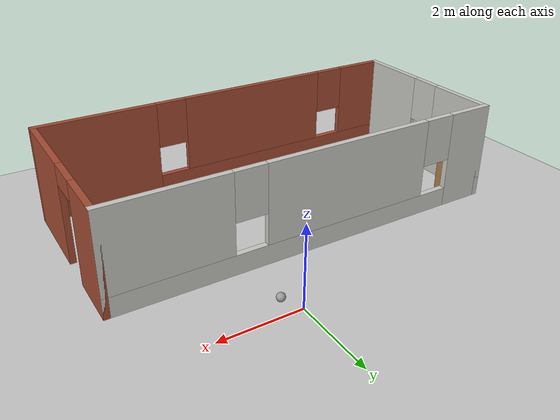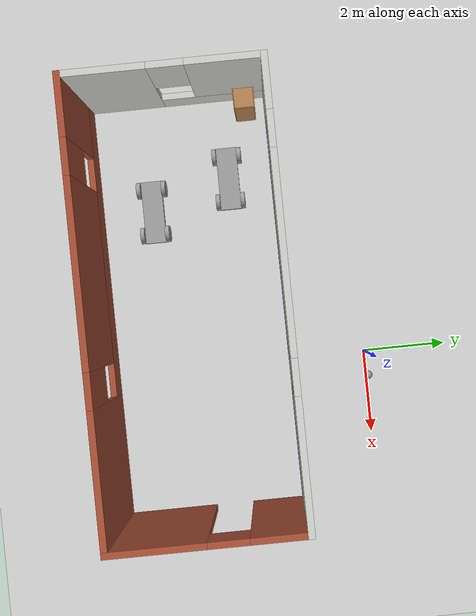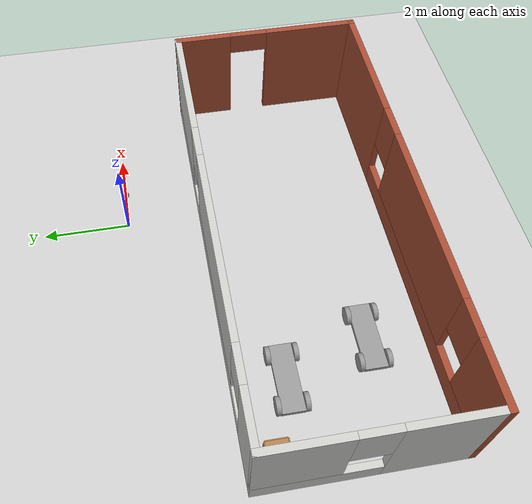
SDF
<sdf version="1.6">
 <world name="default">
  <plugin name="hello" filename="libhello.so"/>
  <light name="sun" type="directional">
   <pose>0 0 10 0 -0 0</pose>
   <diffuse>0.8 0.8 0.8 1</diffuse>
   <specular>0.2 0.2 0.2 1</specular>
   <attenuation>
    <range>1000</range>
    <constant>0.9</constant>
    <linear>0.01</linear>
    <quadratic>0.001</quadratic>
   </attenuation>
   <direction>-0.5 0.1 -0.9</direction>
  </light>
  <model name="ground_plane">
   <static>1</static>
   <link name="link">
    <collision name="collision">
     <geometry><plane><normal>0 0 1</normal><size>100 100</size></plane></geometry>
     <surface>
      <contact><collide_bitmask>65535</collide_bitmask></contact>
      <friction><ode><mu>100</mu><mu2>50</mu2></ode></friction>
     </surface>
    </collision>
    <visual name="visual">
     <cast_shadows>0</cast_shadows>
     <geometry><plane><normal>0 0 1</normal><size>100 100</size></plane></geometry>
     <material>
      <script><uri>file://media/materials/scripts/gazebo.material</uri><name>Gazebo/Grey</name></script>
     </material>
    </visual>
   </link>
  </model>
  <gravity>0 0 -9.8</gravity>
  <magnetic_field>6e-06 2.3e-05 -4.2e-05</magnetic_field>
  <atmosphere type="adiabatic"/>
  <physics name="default_physics" default="0" type="ode">
   <max_step_size>0.001</max_step_size>
   <real_time_factor>1</real_time_factor>
   <real_time_update_rate>1000</real_time_update_rate>
  </physics>
  <scene><ambient>0.4 0.4 0.4 1</ambient><background>0.7 0.7 0.7 1</background><shadows>1</shadows></scene>
  <spherical_coordinates>
   <surface_model>EARTH_WGS84</surface_model>
   <latitude_deg>0</latitude_deg>
   <longitude_deg>0</longitude_deg>
   <elevation>0</elevation>
   <heading_deg>0</heading_deg>
  </spherical_coordinates>
  <model name="first_building">
   <pose>-1.53 -3.965 0 0 -0 0</pose>
   <link name="Wall_0">
    <pose>0 2.175 0 0 -0 0</pose>
    <visual name="Wall_0_Visual_0">
     <pose>-4.50845 0 1.25 0 -0 0</pose>
     <geometry><box><size>1.2331 0.15 2.5</size></box></geometry>
     <material>
      <script><uri>file://media/materials/scripts/gazebo.material</uri><name>Gazebo/CeilingTiled</name></script>
      <ambient>1 0.764706 0.305882 1</ambient>
     </material>
     <meta><layer>0</layer></meta>
    </visual>
    <collision name="Wall_0_Collision_0">
     <geometry><box><size>1.2331 0.15 2.5</size></box></geometry>
     <pose>-4.50845 0 1.25 0 -0 0</pose>
    </collision>
    <visual name="Wall_0_Visual_1">
     <pose>0.616552 0 0.25 0 -0 0</pose>
     <geometry><box><size>9.01689 0.15 0.5</size></box></geometry>
     <material>
      <script><uri>file://media/materials/scripts/gazebo.material</uri><name>Gazebo/CeilingTiled</name></script>
      <ambient>1 0.764706 0.305882 1</ambient>
     </material>
     <meta><layer>0</layer></meta>
    </visual>
    <collision name="Wall_0_Collision_1">
     <geometry><box><size>9.01689 0.15 0.5</size></box></geometry>
     <pose>0.616552 0 0.25 0 -0 0</pose>
    </collision>
    <visual name="Wall_0_Visual_2">
     <pose>-0.880335 0 1.5 0 -0 0</pose>
     <geometry><box><size>4.42312 0.15 2</size></box></geometry>
     <material>
      <script><uri>file://media/materials/scripts/gazebo.material</uri><name>Gazebo/CeilingTiled</name></script>
      <ambient>1 0.764706 0.305882 1</ambient>
     </material>
     <meta><layer>0</layer></meta>
    </visual>
    <collision name="Wall_0_Collision_2">
     <geometry><box><size>4.42312 0.15 2</size></box></geometry>
     <pose>-0.880335 0 1.5 0 -0 0</pose>
    </collision>
    <visual name="Wall_0_Visual_3">
     <pose>3.62811 0 1.5 0 -0 0</pose>
     <geometry><box><size>2.99377 0.15 2</size></box></geometry>
     <material>
      <script><uri>file://media/materials/scripts/gazebo.material</uri><name>Gazebo/CeilingTiled</name></script>
      <ambient>1 0.764706 0.305882 1</ambient>
     </material>
     <meta><layer>0</layer></meta>
    </visual>
    <collision name="Wall_0_Collision_3">
     <geometry><box><size>2.99377 0.15 2</size></box></geometry>
     <pose>3.62811 0 1.5 0 -0 0</pose>
    </collision>
    <visual name="Wall_0_Visual_4">
     <pose>-3.49189 0 1.9 0 -0 0</pose>
     <geometry><box><size>0.8 0.15 1.2</size></box></geometry>
     <material>
      <script><uri>file://media/materials/scripts/gazebo.material</uri><name>Gazebo/CeilingTiled</name></script>
      <ambient>1 0.764706 0.305882 1</ambient>
     </material>
     <meta><layer>0</layer></meta>
    </visual>
    <collision name="Wall_0_Collision_4">
     <geometry><box><size>0.8 0.15 1.2</size></box></geometry>
     <pose>-3.49189 0 1.9 0 -0 0</pose>
    </collision>
    <visual name="Wall_0_Visual_5">
     <pose>1.73123 0 1.9 0 -0 0</pose>
     <geometry><box><size>0.8 0.15 1.2</size></box></geometry>
     <material>
      <script><uri>file://media/materials/scripts/gazebo.material</uri><name>Gazebo/CeilingTiled</name></script>
      <ambient>1 0.764706 0.305882 1</ambient>
     </material>
     <meta><layer>0</layer></meta>
    </visual>
    <collision name="Wall_0_Collision_5">
     <geometry><box><size>0.8 0.15 1.2</size></box></geometry>
     <pose>1.73123 0 1.9 0 -0 0</pose>
    </collision>
   </link>
   <link name="Wall_1">
    <pose>5.05 0 0 0 0 -1.5708</pose>
    <visual name="Wall_1_Visual_0">
     <pose>-1.56729 0 1.25 0 -0 0</pose>
     <geometry><box><size>1.36542 0.15 2.5</size></box></geometry>
     <material>
      <script><uri>file://media/materials/scripts/gazebo.material</uri><name>Gazebo/Bricks</name></script>
      <ambient>1 1 1 1</ambient>
     </material>
     <meta><layer>0</layer></meta>
    </visual>
    <collision name="Wall_1_Collision_0">
     <geometry><box><size>1.36542 0.15 2.5</size></box></geometry>
     <pose>-1.56729 0 1.25 0 -0 0</pose>
    </collision>
    <visual name="Wall_1_Visual_1">
     <pose>1.13271 0 1.25 0 -0 0</pose>
     <geometry><box><size>2.23458 0.15 2.5</size></box></geometry>
     <material>
      <script><uri>file://media/materials/scripts/gazebo.material</uri><name>Gazebo/Bricks</name></script>
      <ambient>1 1 1 1</ambient>
     </material>
     <meta><layer>0</layer></meta>
    </visual>
    <collision name="Wall_1_Collision_1">
     <geometry><box><size>2.23458 0.15 2.5</size></box></geometry>
     <pose>1.13271 0 1.25 0 -0 0</pose>
    </collision>
    <visual name="Wall_1_Visual_2">
     <pose>-0.434579 0 2.25 0 -0 0</pose>
     <geometry><box><size>0.9 0.15 0.5</size></box></geometry>
     <material>
      <script><uri>file://media/materials/scripts/gazebo.material</uri><name>Gazebo/Bricks</name></script>
      <ambient>1 1 1 1</ambient>
     </material>
     <meta><layer>0</layer></meta>
    </visual>
    <collision name="Wall_1_Collision_2">
     <geometry><box><size>0.9 0.15 0.5</size></box></geometry>
     <pose>-0.434579 0 2.25 0 -0 0</pose>
    </collision>
   </link>
   <link name="Wall_2">
    <pose>0 -2.175 0 0 -0 3.14159</pose>
    <visual name="Wall_2_Visual_0">
     <pose>-3.56363 0 1.25 0 -0 0</pose>
     <geometry><box><size>3.12274 0.15 2.5</size></box></geometry>
     <material>
      <script><uri>file://media/materials/scripts/gazebo.material</uri><name>Gazebo/Bricks</name></script>
      <ambient>1 1 1 1</ambient>
     </material>
     <meta><layer>0</layer></meta>
    </visual>
    <collision name="Wall_2_Collision_0">
     <geometry><box><size>3.12274 0.15 2.5</size></box></geometry>
     <pose>-3.56363 0 1.25 0 -0 0</pose>
    </collision>
    <visual name="Wall_2_Visual_1">
     <pose>1.56137 0 0.25 0 -0 0</pose>
     <geometry><box><size>7.12726 0.15 0.5</size></box></geometry>
     <material>
      <script><uri>file://media/materials/scripts/gazebo.material</uri><name>Gazebo/Bricks</name></script>
      <ambient>1 1 1 1</ambient>
     </material>
     <meta><layer>0</layer></meta>
    </visual>
    <collision name="Wall_2_Collision_1">
     <geometry><box><size>7.12726 0.15 0.5</size></box></geometry>
     <pose>1.56137 0 0.25 0 -0 0</pose>
    </collision>
    <visual name="Wall_2_Visual_2">
     <pose>0.864214 0 1.5 0 -0 0</pose>
     <geometry><box><size>4.13295 0.15 2</size></box></geometry>
     <material>
      <script><uri>file://media/materials/scripts/gazebo.material</uri><name>Gazebo/Bricks</name></script>
      <ambient>1 1 1 1</ambient>
     </material>
     <meta><layer>0</layer></meta>
    </visual>
    <collision name="Wall_2_Collision_2">
     <geometry><box><size>4.13295 0.15 2</size></box></geometry>
     <pose>0.864214 0 1.5 0 -0 0</pose>
    </collision>
    <visual name="Wall_2_Visual_3">
     <pose>4.42784 0 1.5 0 -0 0</pose>
     <geometry><box><size>1.39431 0.15 2</size></box></geometry>
     <material>
      <script><uri>file://media/materials/scripts/gazebo.material</uri><name>Gazebo/Bricks</name></script>
      <ambient>1 1 1 1</ambient>
     </material>
     <meta><layer>0</layer></meta>
    </visual>
    <collision name="Wall_2_Collision_3">
     <geometry><box><size>1.39431 0.15 2</size></box></geometry>
     <pose>4.42784 0 1.5 0 -0 0</pose>
    </collision>
    <visual name="Wall_2_Visual_4">
     <pose>-1.60226 0 1.9 0 -0 0</pose>
     <geometry><box><size>0.8 0.15 1.2</size></box></geometry>
     <material>
      <script><uri>file://media/materials/scripts/gazebo.material</uri><name>Gazebo/Bricks</name></script>
      <ambient>1 1 1 1</ambient>
     </material>
     <meta><layer>0</layer></meta>
    </visual>
    <collision name="Wall_2_Collision_4">
     <geometry><box><size>0.8 0.15 1.2</size></box></geometry>
     <pose>-1.60226 0 1.9 0 -0 0</pose>
    </collision>
    <visual name="Wall_2_Visual_5">
     <pose>3.33069 0 1.9 0 -0 0</pose>
     <geometry><box><size>0.8 0.15 1.2</size></box></geometry>
     <material>
      <script><uri>file://media/materials/scripts/gazebo.material</uri><name>Gazebo/Bricks</name></script>
      <ambient>1 1 1 1</ambient>
     </material>
     <meta><layer>0</layer></meta>
    </visual>
    <collision name="Wall_2_Collision_5">
     <geometry><box><size>0.8 0.15 1.2</size></box></geometry>
     <pose>3.33069 0 1.9 0 -0 0</pose>
    </collision>
   </link>
   <link name="Wall_3">
    <pose>-5.05 0 0 0 -0 1.5708</pose>
    <visual name="Wall_3_Visual_0">
     <pose>-1.28504 0 1.25 0 -0 0</pose>
     <geometry><box><size>1.92992 0.15 2.5</size></box></geometry>
     <material>
      <script><uri>file://media/materials/scripts/gazebo.material</uri><name>Gazebo/CeilingTiled</name></script>
      <ambient>1 0.764706 0.305882 1</ambient>
     </material>
     <meta><layer>0</layer></meta>
    </visual>
    <collision name="Wall_3_Collision_0">
     <geometry><box><size>1.92992 0.15 2.5</size></box></geometry>
     <pose>-1.28504 0 1.25 0 -0 0</pose>
    </collision>
    <visual name="Wall_3_Visual_1">
     <pose>0.964962 0 0.25 0 -0 0</pose>
     <geometry><box><size>2.57008 0.15 0.5</size></box></geometry>
     <material>
      <script><uri>file://media/materials/scripts/gazebo.material</uri><name>Gazebo/CeilingTiled</name></script>
      <ambient>1 0.764706 0.305882 1</ambient>
     </material>
     <meta><layer>0</layer></meta>
    </visual>
    <collision name="Wall_3_Collision_1">
     <geometry><box><size>2.57008 0.15 0.5</size></box></geometry>
     <pose>0.964962 0 0.25 0 -0 0</pose>
    </collision>
    <visual name="Wall_3_Visual_2">
     <pose>1.36496 0 1.5 0 -0 0</pose>
     <geometry><box><size>1.77008 0.15 2</size></box></geometry>
     <material>
      <script><uri>file://media/materials/scripts/gazebo.material</uri><name>Gazebo/CeilingTiled</name></script>
      <ambient>1 0.764706 0.305882 1</ambient>
     </material>
     <meta><layer>0</layer></meta>
    </visual>
    <collision name="Wall_3_Collision_2">
     <geometry><box><size>1.77008 0.15 2</size></box></geometry>
     <pose>1.36496 0 1.5 0 -0 0</pose>
    </collision>
    <visual name="Wall_3_Visual_3">
     <pose>0.079923 0 1.9 0 -0 0</pose>
     <geometry><box><size>0.8 0.15 1.2</size></box></geometry>
     <material>
      <script><uri>file://media/materials/scripts/gazebo.material</uri><name>Gazebo/CeilingTiled</name></script>
      <ambient>1 0.764706 0.305882 1</ambient>
     </material>
     <meta><layer>0</layer></meta>
    </visual>
    <collision name="Wall_3_Collision_3">
     <geometry><box><size>0.8 0.15 1.2</size></box></geometry>
     <pose>0.079923 0 1.9 0 -0 0</pose>
    </collision>
   </link>
   <static>1</static>
  </model>
  <model name="cabinet">
   <static>1</static>
   <link name="cabinet_bottom_plate">
    <inertial>
     <pose>0 0 -1 0 -0 0</pose>
     <inertia><ixx>2.05</ixx><ixy>0</ixy><ixz>0</ixz><iyy>2.05</iyy><iyz>0</iyz><izz>2.05</izz></inertia>
     <mass>25</mass>
    </inertial>
    <collision name="cabinet_bottom_plate_geom">
     <pose>0 0 0.01 0 -0 0</pose>
     <geometry><box><size>0.45 0.45 0.02</size></box></geometry>
    </collision>
    <visual name="cabinet_bottom_plate_geom_visual">
     <pose>0 0 0.01 0 -0 0</pose>
     <geometry><box><size>0.45 0.45 0.02</size></box></geometry>
     <material>
      <script><uri>file://media/materials/scripts/gazebo.material</uri><name>Gazebo/Wood</name></script>
     </material>
    </visual>
    <collision name="cabinet_bottom_plate_geom_cabinet_back_plate">
     <pose>0.235 0 0.51 0 -0 0</pose>
     <geometry><box><size>0.02 0.45 1.02</size></box></geometry>
    </collision>
    <visual name="cabinet_bottom_plate_geom_cabinet_back_plate_visual">
     <pose>0.235 0 0.51 0 -0 0</pose>
     <geometry><box><size>0.02 0.45 1.02</size></box></geometry>
     <material>
      <script><uri>file://media/materials/scripts/gazebo.material</uri><name>Gazebo/Wood</name></script>
     </material>
    </visual>
    <collision name="cabinet_bottom_plate_geom_cabinet_left_plate">
     <pose>0 0.235 0.51 0 -0 0</pose>
     <geometry><box><size>0.45 0.02 1.02</size></box></geometry>
    </collision>
    <visual name="cabinet_bottom_plate_geom_cabinet_left_plate_visual">
     <pose>0 0.235 0.51 0 -0 0</pose>
     <geometry><box><size>0.45 0.02 1.02</size></box></geometry>
     <material>
      <script><uri>file://media/materials/scripts/gazebo.material</uri><name>Gazebo/Wood</name></script>
     </material>
    </visual>
    <collision name="cabinet_bottom_plate_geom_cabinet_middle_plate">
     <pose>0 0 0.51 0 -0 0</pose>
     <geometry><box><size>0.45 0.45 0.02</size></box></geometry>
    </collision>
    <visual name="cabinet_bottom_plate_geom_cabinet_middle_plate_visual">
     <pose>0 0 0.51 0 -0 0</pose>
     <geometry><box><size>0.45 0.45 0.02</size></box></geometry>
     <material>
      <script><uri>file://media/materials/scripts/gazebo.material</uri><name>Gazebo/Wood</name></script>
     </material>
    </visual>
    <collision name="cabinet_bottom_plate_geom_cabinet_right_plate">
     <pose>0 -0.235 0.51 0 -0 0</pose>
     <geometry><box><size>0.45 0.02 1.02</size></box></geometry>
    </collision>
    <visual name="cabinet_bottom_plate_geom_cabinet_right_plate_visual">
     <pose>0 -0.235 0.51 0 -0 0</pose>
     <geometry><box><size>0.45 0.02 1.02</size></box></geometry>
     <material>
      <script><uri>file://media/materials/scripts/gazebo.material</uri><name>Gazebo/Wood</name></script>
     </material>
    </visual>
    <collision name="cabinet_bottom_plate_geom_cabinet_top_plate">
     <pose>0 0 1.01 0 -0 0</pose>
     <geometry><box><size>0.45 0.45 0.02</size></box></geometry>
    </collision>
    <visual name="cabinet_bottom_plate_geom_cabinet_top_plate_visual">
     <pose>0 0 1.01 0 -0 0</pose>
     <geometry><box><size>0.45 0.45 0.02</size></box></geometry>
     <material>
      <script><uri>file://media/materials/scripts/gazebo.material</uri><name>Gazebo/Wood</name></script>
     </material>
    </visual>
   </link>
   <pose>-6.20598 -2.33068 0 0 -0 0</pose>
  </model>
  <model name="my_wagon">
   <link name="link_0">
    <pose>2e-06 -0 0 0 -0 0</pose>
    <inertial>
     <mass>1</mass>
     <inertia>
      <ixx>0.166667</ixx>
      <ixy>0</ixy>
      <ixz>0</ixz>
      <iyy>0.166667</iyy>
      <iyz>0</iyz>
      <izz>0.166667</izz>
     </inertia>
     <pose>0 0 0.2 0 -0 0</pose>
    </inertial>
    <visual name="visual">
     <geometry><box><size>1.5 0.5 0.1</size></box></geometry>
     <material>
      <lighting>1</lighting>
      <script><uri>file://media/materials/scripts/gazebo.material</uri><name>Gazebo/Grey</name></script>
      <shader type="pixel"><normal_map>__default__</normal_map></shader>
      <ambient>0.3 0.3 0.3 1</ambient>
      <diffuse>0.7 0.7 0.7 1</diffuse>
      <specular>0.01 0.01 0.01 1</specular>
      <emissive>0 0 0 1</emissive>
     </material>
    </visual>
    <collision name="collision">
     <geometry><box><size>1.5 0.5 0.1</size></box></geometry>
     <surface>
      <friction>
       <ode><mu>1</mu><mu2>1</mu2><fdir1>0 0 0</fdir1><slip1>0</slip1><slip2>0</slip2></ode>
       <torsional>
        <coefficient>1</coefficient>
        <patch_radius>0</patch_radius>
        <surface_radius>0</surface_radius>
        <use_patch_radius>1</use_patch_radius>
        <ode><slip>0</slip></ode>
       </torsional>
      </friction>
      <bounce><restitution_coefficient>0</restitution_coefficient><threshold>1e+06</threshold></bounce>
      <contact>
       <collide_without_contact>0</collide_without_contact>
       <collide_without_contact_bitmask>1</collide_without_contact_bitmask>
       <collide_bitmask>1</collide_bitmask>
       <ode>
        <soft_cfm>0</soft_cfm>
        <soft_erp>0.2</soft_erp>
        <kp>1e+13</kp>
        <kd>1</kd>
        <max_vel>0.01</max_vel>
        <min_depth>0</min_depth>
       </ode>
       <bullet>
        <split_impulse>1</split_impulse>
        <split_impulse_penetration_threshold>-0.01</split_impulse_penetration_threshold>
        <soft_cfm>0</soft_cfm>
        <soft_erp>0.2</soft_erp>
        <kp>1e+13</kp>
        <kd>1</kd>
       </bullet>
      </contact>
     </surface>
    </collision>
   </link>
   <link name="link_3_clone_0">
    <pose>-0.549998 -0.30002 0 1.5707 -0 0</pose>
    <inertial>
     <mass>1</mass>
     <inertia><ixx>0.145833</ixx><ixy>0</ixy><ixz>0</ixz><iyy>0.145833</iyy><iyz>0</iyz><izz>0.125</izz></inertia>
    </inertial>
    <visual name="visual">
     <geometry><cylinder><radius>0.2</radius><length>0.1</length></cylinder></geometry>
     <material>
      <lighting>1</lighting>
      <script><uri>file://media/materials/scripts/gazebo.material</uri><name>Gazebo/Grey</name></script>
      <shader type="pixel"><normal_map>__default__</normal_map></shader>
      <ambient>0.3 0.3 0.3 1</ambient>
      <diffuse>0.7 0.7 0.7 1</diffuse>
      <specular>0.01 0.01 0.01 1</specular>
      <emissive>0 0 0 1</emissive>
     </material>
    </visual>
    <collision name="collision">
     <geometry><cylinder><radius>0.2</radius><length>0.1</length></cylinder></geometry>
     <surface>
      <friction>
       <ode><mu>1</mu><mu2>1</mu2><fdir1>0 0 0</fdir1><slip1>0</slip1><slip2>0</slip2></ode>
       <torsional>
        <coefficient>1</coefficient>
        <patch_radius>0</patch_radius>
        <surface_radius>0</surface_radius>
        <use_patch_radius>1</use_patch_radius>
        <ode><slip>0</slip></ode>
       </torsional>
      </friction>
      <bounce><restitution_coefficient>0</restitution_coefficient><threshold>1e+06</threshold></bounce>
      <contact>
       <collide_without_contact>0</collide_without_contact>
       <collide_without_contact_bitmask>1</collide_without_contact_bitmask>
       <collide_bitmask>1</collide_bitmask>
       <ode>
        <soft_cfm>0</soft_cfm>
        <soft_erp>0.2</soft_erp>
        <kp>1e+13</kp>
        <kd>1</kd>
        <max_vel>0.01</max_vel>
        <min_depth>0</min_depth>
       </ode>
       <bullet>
        <split_impulse>1</split_impulse>
        <split_impulse_penetration_threshold>-0.01</split_impulse_penetration_threshold>
        <soft_cfm>0</soft_cfm>
        <soft_erp>0.2</soft_erp>
        <kp>1e+13</kp>
        <kd>1</kd>
       </bullet>
      </contact>
     </surface>
    </collision>
   </link>
   <link name="link_3_clone_1">
    <pose>-0.549998 0.300019 0 1.5707 -0 0</pose>
    <inertial>
     <mass>1</mass>
     <inertia><ixx>0.145833</ixx><ixy>0</ixy><ixz>0</ixz><iyy>0.145833</iyy><iyz>0</iyz><izz>0.125</izz></inertia>
    </inertial>
    <visual name="visual">
     <geometry><cylinder><radius>0.2</radius><length>0.1</length></cylinder></geometry>
     <material>
      <lighting>1</lighting>
      <script><uri>file://media/materials/scripts/gazebo.material</uri><name>Gazebo/Grey</name></script>
      <shader type="pixel"><normal_map>__default__</normal_map></shader>
      <ambient>0.3 0.3 0.3 1</ambient>
      <diffuse>0.7 0.7 0.7 1</diffuse>
      <specular>0.01 0.01 0.01 1</specular>
      <emissive>0 0 0 1</emissive>
     </material>
    </visual>
    <collision name="collision">
     <geometry><cylinder><radius>0.2</radius><length>0.1</length></cylinder></geometry>
     <surface>
      <friction>
       <ode><mu>1</mu><mu2>1</mu2><fdir1>0 0 0</fdir1><slip1>0</slip1><slip2>0</slip2></ode>
       <torsional>
        <coefficient>1</coefficient>
        <patch_radius>0</patch_radius>
        <surface_radius>0</surface_radius>
        <use_patch_radius>1</use_patch_radius>
        <ode><slip>0</slip></ode>
       </torsional>
      </friction>
      <bounce><restitution_coefficient>0</restitution_coefficient><threshold>1e+06</threshold></bounce>
      <contact>
       <collide_without_contact>0</collide_without_contact>
       <collide_without_contact_bitmask>1</collide_without_contact_bitmask>
       <collide_bitmask>1</collide_bitmask>
       <ode>
        <soft_cfm>0</soft_cfm>
        <soft_erp>0.2</soft_erp>
        <kp>1e+13</kp>
        <kd>1</kd>
        <max_vel>0.01</max_vel>
        <min_depth>0</min_depth>
       </ode>
       <bullet>
        <split_impulse>1</split_impulse>
        <split_impulse_penetration_threshold>-0.01</split_impulse_penetration_threshold>
        <soft_cfm>0</soft_cfm>
        <soft_erp>0.2</soft_erp>
        <kp>1e+13</kp>
        <kd>1</kd>
       </bullet>
      </contact>
     </surface>
    </collision>
   </link>
   <link name="link_3_clone_clone">
    <pose>0.550002 -0.30002 0 1.5707 -0 0</pose>
    <inertial>
     <mass>1</mass>
     <inertia><ixx>0.145833</ixx><ixy>0</ixy><ixz>0</ixz><iyy>0.145833</iyy><iyz>0</iyz><izz>0.125</izz></inertia>
    </inertial>
    <visual name="visual">
     <geometry><cylinder><radius>0.2</radius><length>0.1</length></cylinder></geometry>
     <material>
      <lighting>1</lighting>
      <script><uri>file://media/materials/scripts/gazebo.material</uri><name>Gazebo/Grey</name></script>
      <shader type="pixel"><normal_map>__default__</normal_map></shader>
      <ambient>0.3 0.3 0.3 1</ambient>
      <diffuse>0.7 0.7 0.7 1</diffuse>
      <specular>0.01 0.01 0.01 1</specular>
      <emissive>0 0 0 1</emissive>
     </material>
    </visual>
    <collision name="collision">
     <geometry><cylinder><radius>0.2</radius><length>0.1</length></cylinder></geometry>
     <surface>
      <friction>
       <ode><mu>1</mu><mu2>1</mu2><fdir1>0 0 0</fdir1><slip1>0</slip1><slip2>0</slip2></ode>
       <torsional>
        <coefficient>1</coefficient>
        <patch_radius>0</patch_radius>
        <surface_radius>0</surface_radius>
        <use_patch_radius>1</use_patch_radius>
        <ode><slip>0</slip></ode>
       </torsional>
      </friction>
      <bounce><restitution_coefficient>0</restitution_coefficient><threshold>1e+06</threshold></bounce>
      <contact>
       <collide_without_contact>0</collide_without_contact>
       <collide_without_contact_bitmask>1</collide_without_contact_bitmask>
       <collide_bitmask>1</collide_bitmask>
       <ode>
        <soft_cfm>0</soft_cfm>
        <soft_erp>0.2</soft_erp>
        <kp>1e+13</kp>
        <kd>1</kd>
        <max_vel>0.01</max_vel>
        <min_depth>0</min_depth>
       </ode>
       <bullet>
        <split_impulse>1</split_impulse>
        <split_impulse_penetration_threshold>-0.01</split_impulse_penetration_threshold>
        <soft_cfm>0</soft_cfm>
        <soft_erp>0.2</soft_erp>
        <kp>1e+13</kp>
        <kd>1</kd>
       </bullet>
      </contact>
     </surface>
    </collision>
   </link>
   <link name="link_3_clone_clone_0">
    <pose>0.550002 0.300019 0 1.5707 -0 0</pose>
    <inertial>
     <mass>1</mass>
     <inertia><ixx>0.145833</ixx><ixy>0</ixy><ixz>0</ixz><iyy>0.145833</iyy><iyz>0</iyz><izz>0.125</izz></inertia>
    </inertial>
    <visual name="visual">
     <geometry><cylinder><radius>0.2</radius><length>0.1</length></cylinder></geometry>
     <material>
      <lighting>1</lighting>
      <script><uri>file://media/materials/scripts/gazebo.material</uri><name>Gazebo/Grey</name></script>
      <shader type="pixel"><normal_map>__default__</normal_map></shader>
      <ambient>0.3 0.3 0.3 1</ambient>
      <diffuse>0.7 0.7 0.7 1</diffuse>
      <specular>0.01 0.01 0.01 1</specular>
      <emissive>0 0 0 1</emissive>
     </material>
    </visual>
    <collision name="collision">
     <geometry><cylinder><radius>0.2</radius><length>0.1</length></cylinder></geometry>
     <surface>
      <friction>
       <ode><mu>1</mu><mu2>1</mu2><fdir1>0 0 0</fdir1><slip1>0</slip1><slip2>0</slip2></ode>
       <torsional>
        <coefficient>1</coefficient>
        <patch_radius>0</patch_radius>
        <surface_radius>0</surface_radius>
        <use_patch_radius>1</use_patch_radius>
        <ode><slip>0</slip></ode>
       </torsional>
      </friction>
      <bounce><restitution_coefficient>0</restitution_coefficient><threshold>1e+06</threshold></bounce>
      <contact>
       <collide_without_contact>0</collide_without_contact>
       <collide_without_contact_bitmask>1</collide_without_contact_bitmask>
       <collide_bitmask>1</collide_bitmask>
       <ode>
        <soft_cfm>0</soft_cfm>
        <soft_erp>0.2</soft_erp>
        <kp>1e+13</kp>
        <kd>1</kd>
        <max_vel>0.01</max_vel>
        <min_depth>0</min_depth>
       </ode>
       <bullet>
        <split_impulse>1</split_impulse>
        <split_impulse_penetration_threshold>-0.01</split_impulse_penetration_threshold>
        <soft_cfm>0</soft_cfm>
        <soft_erp>0.2</soft_erp>
        <kp>1e+13</kp>
        <kd>1</kd>
       </bullet>
      </contact>
     </surface>
    </collision>
   </link>
   <joint name="link_0_JOINT_0" type="revolute">
    <parent>link_0</parent>
    <child>link_3_clone_0</child>
    <axis>
     <xyz>0 0 1</xyz>
     <use_parent_model_frame>0</use_parent_model_frame>
     <limit>
      <lower>-1.79769e+308</lower>
      <upper>1.79769e+308</upper>
      <effort>-1</effort>
      <velocity>-1</velocity>
     </limit>
     <dynamics>
      <spring_reference>0</spring_reference>
      <spring_stiffness>0</spring_stiffness>
      <damping>0</damping>
     </dynamics>
    </axis>
    <physics>
     <ode><limit><cfm>0</cfm><erp>0.2</erp></limit><suspension><cfm>0</cfm><erp>0.2</erp></suspension></ode>
    </physics>
   </joint>
   <joint name="link_0_JOINT_1" type="revolute">
    <parent>link_0</parent>
    <child>link_3_clone_clone</child>
    <axis>
     <xyz>0 0 1</xyz>
     <use_parent_model_frame>0</use_parent_model_frame>
     <limit>
      <lower>-1.79769e+308</lower>
      <upper>1.79769e+308</upper>
      <effort>-1</effort>
      <velocity>-1</velocity>
     </limit>
     <dynamics>
      <spring_reference>0</spring_reference>
      <spring_stiffness>0</spring_stiffness>
      <damping>0</damping>
      <friction>0</friction>
     </dynamics>
    </axis>
    <physics>
     <ode><limit><cfm>0</cfm><erp>0.2</erp></limit><suspension><cfm>0</cfm><erp>0.2</erp></suspension></ode>
    </physics>
   </joint>
   <joint name="link_0_JOINT_3" type="revolute">
    <parent>link_0</parent>
    <child>link_3_clone_1</child>
    <axis>
     <xyz>0 0 1</xyz>
     <use_parent_model_frame>0</use_parent_model_frame>
     <limit>
      <lower>-1.79769e+308</lower>
      <upper>1.79769e+308</upper>
      <effort>-1</effort>
      <velocity>-1</velocity>
     </limit>
     <dynamics>
      <spring_reference>0</spring_reference>
      <spring_stiffness>0</spring_stiffness>
      <damping>0</damping>
     </dynamics>
    </axis>
    <physics>
     <ode><limit><cfm>0</cfm><erp>0.2</erp></limit><suspension><cfm>0</cfm><erp>0.2</erp></suspension></ode>
    </physics>
   </joint>
   <joint name="link_0_JOINT_4" type="revolute">
    <parent>link_0</parent>
    <child>link_3_clone_clone_0</child>
    <axis>
     <xyz>0 0 1</xyz>
     <use_parent_model_frame>0</use_parent_model_frame>
     <limit>
      <lower>-1.79769e+308</lower>
      <upper>1.79769e+308</upper>
      <effort>-1</effort>
      <velocity>-1</velocity>
     </limit>
     <dynamics>
      <spring_reference>0</spring_reference>
      <spring_stiffness>0</spring_stiffness>
      <damping>0</damping>
     </dynamics>
    </axis>
    <physics>
     <ode><limit><cfm>0</cfm><erp>0.2</erp></limit><suspension><cfm>0</cfm><erp>0.2</erp></suspension></ode>
    </physics>
   </joint>
   <static>0</static>
   <pose>-4.52565 -2.89903 0.2 2e-06 -7e-06 -0.002392</pose>
  </model>
  <model name="my_wagon_0">
   <link name="link_0">
    <pose>2e-06 -0 0 0 -0 0</pose>
    <inertial>
     <mass>1</mass>
     <inertia>
      <ixx>0.166667</ixx>
      <ixy>0</ixy>
      <ixz>0</ixz>
      <iyy>0.166667</iyy>
      <iyz>0</iyz>
      <izz>0.166667</izz>
     </inertia>
     <pose>0 0 0.2 0 -0 0</pose>
    </inertial>
    <visual name="visual">
     <geometry><box><size>1.5 0.5 0.1</size></box></geometry>
     <material>
      <lighting>1</lighting>
      <script><uri>file://media/materials/scripts/gazebo.material</uri><name>Gazebo/Grey</name></script>
      <shader type="pixel"><normal_map>__default__</normal_map></shader>
      <ambient>0.3 0.3 0.3 1</ambient>
      <diffuse>0.7 0.7 0.7 1</diffuse>
      <specular>0.01 0.01 0.01 1</specular>
      <emissive>0 0 0 1</emissive>
     </material>
    </visual>
    <collision name="collision">
     <geometry><box><size>1.5 0.5 0.1</size></box></geometry>
     <surface>
      <friction>
       <ode><mu>1</mu><mu2>1</mu2><fdir1>0 0 0</fdir1><slip1>0</slip1><slip2>0</slip2></ode>
       <torsional>
        <coefficient>1</coefficient>
        <patch_radius>0</patch_radius>
        <surface_radius>0</surface_radius>
        <use_patch_radius>1</use_patch_radius>
        <ode><slip>0</slip></ode>
       </torsional>
      </friction>
      <bounce><restitution_coefficient>0</restitution_coefficient><threshold>1e+06</threshold></bounce>
      <contact>
       <collide_without_contact>0</collide_without_contact>
       <collide_without_contact_bitmask>1</collide_without_contact_bitmask>
       <collide_bitmask>1</collide_bitmask>
       <ode>
        <soft_cfm>0</soft_cfm>
        <soft_erp>0.2</soft_erp>
        <kp>1e+13</kp>
        <kd>1</kd>
        <max_vel>0.01</max_vel>
        <min_depth>0</min_depth>
       </ode>
       <bullet>
        <split_impulse>1</split_impulse>
        <split_impulse_penetration_threshold>-0.01</split_impulse_penetration_threshold>
        <soft_cfm>0</soft_cfm>
        <soft_erp>0.2</soft_erp>
        <kp>1e+13</kp>
        <kd>1</kd>
       </bullet>
      </contact>
     </surface>
    </collision>
   </link>
   <link name="link_3_clone_0">
    <pose>-0.549998 -0.30002 0 1.5707 -0 0</pose>
    <inertial>
     <mass>1</mass>
     <inertia><ixx>0.145833</ixx><ixy>0</ixy><ixz>0</ixz><iyy>0.145833</iyy><iyz>0</iyz><izz>0.125</izz></inertia>
    </inertial>
    <visual name="visual">
     <geometry><cylinder><radius>0.2</radius><length>0.1</length></cylinder></geometry>
     <material>
      <lighting>1</lighting>
      <script><uri>file://media/materials/scripts/gazebo.material</uri><name>Gazebo/Grey</name></script>
      <shader type="pixel"><normal_map>__default__</normal_map></shader>
      <ambient>0.3 0.3 0.3 1</ambient>
      <diffuse>0.7 0.7 0.7 1</diffuse>
      <specular>0.01 0.01 0.01 1</specular>
      <emissive>0 0 0 1</emissive>
     </material>
    </visual>
    <collision name="collision">
     <geometry><cylinder><radius>0.2</radius><length>0.1</length></cylinder></geometry>
     <surface>
      <friction>
       <ode><mu>1</mu><mu2>1</mu2><fdir1>0 0 0</fdir1><slip1>0</slip1><slip2>0</slip2></ode>
       <torsional>
        <coefficient>1</coefficient>
        <patch_radius>0</patch_radius>
        <surface_radius>0</surface_radius>
        <use_patch_radius>1</use_patch_radius>
        <ode><slip>0</slip></ode>
       </torsional>
      </friction>
      <bounce><restitution_coefficient>0</restitution_coefficient><threshold>1e+06</threshold></bounce>
      <contact>
       <collide_without_contact>0</collide_without_contact>
       <collide_without_contact_bitmask>1</collide_without_contact_bitmask>
       <collide_bitmask>1</collide_bitmask>
       <ode>
        <soft_cfm>0</soft_cfm>
        <soft_erp>0.2</soft_erp>
        <kp>1e+13</kp>
        <kd>1</kd>
        <max_vel>0.01</max_vel>
        <min_depth>0</min_depth>
       </ode>
       <bullet>
        <split_impulse>1</split_impulse>
        <split_impulse_penetration_threshold>-0.01</split_impulse_penetration_threshold>
        <soft_cfm>0</soft_cfm>
        <soft_erp>0.2</soft_erp>
        <kp>1e+13</kp>
        <kd>1</kd>
       </bullet>
      </contact>
     </surface>
    </collision>
   </link>
   <link name="link_3_clone_1">
    <pose>-0.549998 0.300019 0 1.5707 -0 0</pose>
    <inertial>
     <mass>1</mass>
     <inertia><ixx>0.145833</ixx><ixy>0</ixy><ixz>0</ixz><iyy>0.145833</iyy><iyz>0</iyz><izz>0.125</izz></inertia>
    </inertial>
    <visual name="visual">
     <geometry><cylinder><radius>0.2</radius><length>0.1</length></cylinder></geometry>
     <material>
      <lighting>1</lighting>
      <script><uri>file://media/materials/scripts/gazebo.material</uri><name>Gazebo/Grey</name></script>
      <shader type="pixel"><normal_map>__default__</normal_map></shader>
      <ambient>0.3 0.3 0.3 1</ambient>
      <diffuse>0.7 0.7 0.7 1</diffuse>
      <specular>0.01 0.01 0.01 1</specular>
      <emissive>0 0 0 1</emissive>
     </material>
    </visual>
    <collision name="collision">
     <geometry><cylinder><radius>0.2</radius><length>0.1</length></cylinder></geometry>
     <surface>
      <friction>
       <ode><mu>1</mu><mu2>1</mu2><fdir1>0 0 0</fdir1><slip1>0</slip1><slip2>0</slip2></ode>
       <torsional>
        <coefficient>1</coefficient>
        <patch_radius>0</patch_radius>
        <surface_radius>0</surface_radius>
        <use_patch_radius>1</use_patch_radius>
        <ode><slip>0</slip></ode>
       </torsional>
      </friction>
      <bounce><restitution_coefficient>0</restitution_coefficient><threshold>1e+06</threshold></bounce>
      <contact>
       <collide_without_contact>0</collide_without_contact>
       <collide_without_contact_bitmask>1</collide_without_contact_bitmask>
       <collide_bitmask>1</collide_bitmask>
       <ode>
        <soft_cfm>0</soft_cfm>
        <soft_erp>0.2</soft_erp>
        <kp>1e+13</kp>
        <kd>1</kd>
        <max_vel>0.01</max_vel>
        <min_depth>0</min_depth>
       </ode>
       <bullet>
        <split_impulse>1</split_impulse>
        <split_impulse_penetration_threshold>-0.01</split_impulse_penetration_threshold>
        <soft_cfm>0</soft_cfm>
        <soft_erp>0.2</soft_erp>
        <kp>1e+13</kp>
        <kd>1</kd>
       </bullet>
      </contact>
     </surface>
    </collision>
   </link>
   <link name="link_3_clone_clone">
    <pose>0.550002 -0.30002 0 1.5707 -0 0</pose>
    <inertial>
     <mass>1</mass>
     <inertia><ixx>0.145833</ixx><ixy>0</ixy><ixz>0</ixz><iyy>0.145833</iyy><iyz>0</iyz><izz>0.125</izz></inertia>
    </inertial>
    <visual name="visual">
     <geometry><cylinder><radius>0.2</radius><length>0.1</length></cylinder></geometry>
     <material>
      <lighting>1</lighting>
      <script><uri>file://media/materials/scripts/gazebo.material</uri><name>Gazebo/Grey</name></script>
      <shader type="pixel"><normal_map>__default__</normal_map></shader>
      <ambient>0.3 0.3 0.3 1</ambient>
      <diffuse>0.7 0.7 0.7 1</diffuse>
      <specular>0.01 0.01 0.01 1</specular>
      <emissive>0 0 0 1</emissive>
     </material>
    </visual>
    <collision name="collision">
     <geometry><cylinder><radius>0.2</radius><length>0.1</length></cylinder></geometry>
     <surface>
      <friction>
       <ode><mu>1</mu><mu2>1</mu2><fdir1>0 0 0</fdir1><slip1>0</slip1><slip2>0</slip2></ode>
       <torsional>
        <coefficient>1</coefficient>
        <patch_radius>0</patch_radius>
        <surface_radius>0</surface_radius>
        <use_patch_radius>1</use_patch_radius>
        <ode><slip>0</slip></ode>
       </torsional>
      </friction>
      <bounce><restitution_coefficient>0</restitution_coefficient><threshold>1e+06</threshold></bounce>
      <contact>
       <collide_without_contact>0</collide_without_contact>
       <collide_without_contact_bitmask>1</collide_without_contact_bitmask>
       <collide_bitmask>1</collide_bitmask>
       <ode>
        <soft_cfm>0</soft_cfm>
        <soft_erp>0.2</soft_erp>
        <kp>1e+13</kp>
        <kd>1</kd>
        <max_vel>0.01</max_vel>
        <min_depth>0</min_depth>
       </ode>
       <bullet>
        <split_impulse>1</split_impulse>
        <split_impulse_penetration_threshold>-0.01</split_impulse_penetration_threshold>
        <soft_cfm>0</soft_cfm>
        <soft_erp>0.2</soft_erp>
        <kp>1e+13</kp>
        <kd>1</kd>
       </bullet>
      </contact>
     </surface>
    </collision>
   </link>
   <link name="link_3_clone_clone_0">
    <pose>0.550002 0.300019 0 1.5707 -0 0</pose>
    <inertial>
     <mass>1</mass>
     <inertia><ixx>0.145833</ixx><ixy>0</ixy><ixz>0</ixz><iyy>0.145833</iyy><iyz>0</iyz><izz>0.125</izz></inertia>
    </inertial>
    <visual name="visual">
     <geometry><cylinder><radius>0.2</radius><length>0.1</length></cylinder></geometry>
     <material>
      <lighting>1</lighting>
      <script><uri>file://media/materials/scripts/gazebo.material</uri><name>Gazebo/Grey</name></script>
      <shader type="pixel"><normal_map>__default__</normal_map></shader>
      <ambient>0.3 0.3 0.3 1</ambient>
      <diffuse>0.7 0.7 0.7 1</diffuse>
      <specular>0.01 0.01 0.01 1</specular>
      <emissive>0 0 0 1</emissive>
     </material>
    </visual>
    <collision name="collision">
     <geometry><cylinder><radius>0.2</radius><length>0.1</length></cylinder></geometry>
     <surface>
      <friction>
       <ode><mu>1</mu><mu2>1</mu2><fdir1>0 0 0</fdir1><slip1>0</slip1><slip2>0</slip2></ode>
       <torsional>
        <coefficient>1</coefficient>
        <patch_radius>0</patch_radius>
        <surface_radius>0</surface_radius>
        <use_patch_radius>1</use_patch_radius>
        <ode><slip>0</slip></ode>
       </torsional>
      </friction>
      <bounce><restitution_coefficient>0</restitution_coefficient><threshold>1e+06</threshold></bounce>
      <contact>
       <collide_without_contact>0</collide_without_contact>
       <collide_without_contact_bitmask>1</collide_without_contact_bitmask>
       <collide_bitmask>1</collide_bitmask>
       <ode>
        <soft_cfm>0</soft_cfm>
        <soft_erp>0.2</soft_erp>
        <kp>1e+13</kp>
        <kd>1</kd>
        <max_vel>0.01</max_vel>
        <min_depth>0</min_depth>
       </ode>
       <bullet>
        <split_impulse>1</split_impulse>
        <split_impulse_penetration_threshold>-0.01</split_impulse_penetration_threshold>
        <soft_cfm>0</soft_cfm>
        <soft_erp>0.2</soft_erp>
        <kp>1e+13</kp>
        <kd>1</kd>
       </bullet>
      </contact>
     </surface>
    </collision>
   </link>
   <joint name="link_0_JOINT_0" type="revolute">
    <parent>link_0</parent>
    <child>link_3_clone_0</child>
    <axis>
     <xyz>0 0 1</xyz>
     <use_parent_model_frame>0</use_parent_model_frame>
     <limit>
      <lower>-1.79769e+308</lower>
      <upper>1.79769e+308</upper>
      <effort>-1</effort>
      <velocity>-1</velocity>
     </limit>
     <dynamics>
      <spring_reference>0</spring_reference>
      <spring_stiffness>0</spring_stiffness>
      <damping>0</damping>
     </dynamics>
    </axis>
    <physics>
     <ode><limit><cfm>0</cfm><erp>0.2</erp></limit><suspension><cfm>0</cfm><erp>0.2</erp></suspension></ode>
    </physics>
   </joint>
   <joint name="link_0_JOINT_1" type="revolute">
    <parent>link_0</parent>
    <child>link_3_clone_clone</child>
    <axis>
     <xyz>0 0 1</xyz>
     <use_parent_model_frame>0</use_parent_model_frame>
     <limit>
      <lower>-1.79769e+308</lower>
      <upper>1.79769e+308</upper>
      <effort>-1</effort>
      <velocity>-1</velocity>
     </limit>
     <dynamics>
      <spring_reference>0</spring_reference>
      <spring_stiffness>0</spring_stiffness>
      <damping>0</damping>
      <friction>0</friction>
     </dynamics>
    </axis>
    <physics>
     <ode><limit><cfm>0</cfm><erp>0.2</erp></limit><suspension><cfm>0</cfm><erp>0.2</erp></suspension></ode>
    </physics>
   </joint>
   <joint name="link_0_JOINT_3" type="revolute">
    <parent>link_0</parent>
    <child>link_3_clone_1</child>
    <axis>
     <xyz>0 0 1</xyz>
     <use_parent_model_frame>0</use_parent_model_frame>
     <limit>
      <lower>-1.79769e+308</lower>
      <upper>1.79769e+308</upper>
      <effort>-1</effort>
      <velocity>-1</velocity>
     </limit>
     <dynamics>
      <spring_reference>0</spring_reference>
      <spring_stiffness>0</spring_stiffness>
      <damping>0</damping>
     </dynamics>
    </axis>
    <physics>
     <ode><limit><cfm>0</cfm><erp>0.2</erp></limit><suspension><cfm>0</cfm><erp>0.2</erp></suspension></ode>
    </physics>
   </joint>
   <joint name="link_0_JOINT_4" type="revolute">
    <parent>link_0</parent>
    <child>link_3_clone_clone_0</child>
    <axis>
     <xyz>0 0 1</xyz>
     <use_parent_model_frame>0</use_parent_model_frame>
     <limit>
      <lower>-1.79769e+308</lower>
      <upper>1.79769e+308</upper>
      <effort>-1</effort>
      <velocity>-1</velocity>
     </limit>
     <dynamics>
      <spring_reference>0</spring_reference>
      <spring_stiffness>0</spring_stiffness>
      <damping>0</damping>
     </dynamics>
    </axis>
    <physics>
     <ode><limit><cfm>0</cfm><erp>0.2</erp></limit><suspension><cfm>0</cfm><erp>0.2</erp></suspension></ode>
    </physics>
   </joint>
   <static>0</static>
   <pose>-3.88798 -4.80081 0.200005 -3e-06 2e-06 -0.003857</pose>
  </model>
  <model name="my_ball">
   <link name="link_0">
    <inertial>
     <mass>1</mass>
     <inertia><ixx>0.1</ixx><ixy>0</ixy><ixz>0</ixz><iyy>0.1</iyy><iyz>0</iyz><izz>0.1</izz></inertia>
    </inertial>
    <visual name="visual">
     <geometry><sphere><radius>0.1</radius></sphere></geometry>
     <material>
      <lighting>1</lighting>
      <script><uri>file://media/materials/scripts/gazebo.material</uri><name>Gazebo/Grey</name></script>
      <shader type="pixel"><normal_map>__default__</normal_map></shader>
      <ambient>0.3 0.3 0.3 1</ambient>
      <diffuse>1 1 1 1</diffuse>
      <specular>1 1 1 1</specular>
      <emissive>1 1 1 1</emissive>
     </material>
    </visual>
    <collision name="collision">
     <geometry><sphere><radius>0.1</radius></sphere></geometry>
     <surface>
      <friction>
       <ode><mu>1</mu><mu2>1</mu2><fdir1>0 0 0</fdir1><slip1>0</slip1><slip2>0</slip2></ode>
       <torsional>
        <coefficient>1</coefficient>
        <patch_radius>0</patch_radius>
        <surface_radius>0</surface_radius>
        <use_patch_radius>1</use_patch_radius>
        <ode><slip>0</slip></ode>
       </torsional>
      </friction>
      <bounce><restitution_coefficient>0</restitution_coefficient><threshold>1e+06</threshold></bounce>
      <contact>
       <collide_without_contact>0</collide_without_contact>
       <collide_without_contact_bitmask>1</collide_without_contact_bitmask>
       <collide_bitmask>1</collide_bitmask>
       <ode>
        <soft_cfm>0</soft_cfm>
        <soft_erp>0.2</soft_erp>
        <kp>1e+13</kp>
        <kd>1</kd>
        <max_vel>0.01</max_vel>
        <min_depth>0</min_depth>
       </ode>
       <bullet>
        <split_impulse>1</split_impulse>
        <split_impulse_penetration_threshold>-0.01</split_impulse_penetration_threshold>
        <soft_cfm>0</soft_cfm>
        <soft_erp>0.2</soft_erp>
        <kp>1e+13</kp>
        <kd>1</kd>
       </bullet>
      </contact>
     </surface>
    </collision>
   </link>
   <static>0</static>
   <pose>0.547475 -0.010238 0.5 0 -0 0</pose>
  </model>
 </world>
</sdf>
